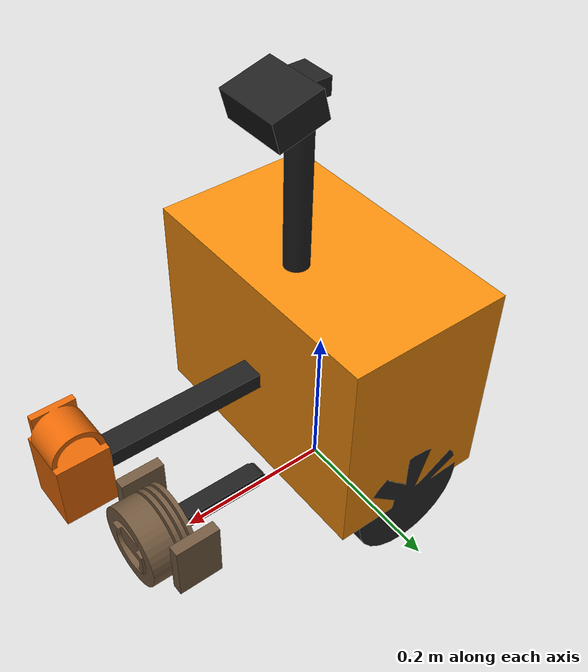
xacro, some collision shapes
<?xml version="1.0"?>
<robot name="shelfbot" xmlns:xacro="http://www.ros.org/wiki/xacro">

  <!-- ══════ PARAMETERS ══════════════════════════════════════════════════ -->
  <xacro:property name="wheel_radius"  value="0.075"/>
  <xacro:property name="wheel_width"   value="0.040"/>
  <xacro:property name="wheel_sep"     value="0.300"/>
  <xacro:property name="caster_radius" value="0.025"/>
  <xacro:property name="body_h"        value="0.260"/>
  <xacro:property name="body_d"        value="0.200"/>
  <xacro:property name="body_w"        value="0.340"/>
  <xacro:property name="climb_stroke"  value="1.400"/>  <!-- 1.4 m max climb height -->

  <!-- ══════ MATERIALS ═══════════════════════════════════════════════════ -->
  <material name="shelfbot_amber">  <color rgba="0.95 0.55 0.05 1.0"/> </material>
  <material name="shelfbot_black">  <color rgba="0.12 0.12 0.12 1.0"/> </material>
  <material name="shelfbot_orange"> <color rgba="0.90 0.40 0.02 1.0"/> </material>
  <material name="shelfbot_rope">   <color rgba="0.45 0.35 0.25 1.0"/> </material>
  <material name="shelfbot_rubber"> <color rgba="0.15 0.15 0.15 1.0"/> </material>
  <material name="shelfbot_grey">   <color rgba="0.60 0.60 0.60 1.0"/> </material>

  <!-- ══════ WORLD + BASE FOOTPRINT ══════════════════════════════════════ -->
  <link name="world"/>
  <link name="base_footprint">
    <visual><geometry><box size="0.001 0.001 0.001"/></geometry></visual>
  </link>
  <joint name="world_to_base_footprint" type="fixed">
    <parent link="world"/><child link="base_footprint"/>
    <origin xyz="0 0 0" rpy="0 0 0"/>
  </joint>
  <joint name="base_footprint_to_base" type="fixed">
    <parent link="base_footprint"/><child link="base_link"/>
    <origin xyz="0 0 ${wheel_radius}" rpy="0 0 0"/>
  </joint>

  <link name="base_link">
    <visual>
      <!-- +body_h/2 lifts the mesh so its bottom sits at the wheel axle line -->
      <origin xyz="0 0 ${body_h/2}" rpy="0 0 0"/>
      <geometry>
        <mesh filename="package://shelfbot_description/meshes/visual/base_link.stl"
              scale="0.001 0.001 0.001"/>
      </geometry>
      <material name="shelfbot_amber"/>
    </visual>
    <collision>
      <origin xyz="0 0 ${body_h/2}" rpy="0 0 0"/>
      <geometry><box size="${body_d} ${body_w} ${body_h}"/></geometry>
    </collision>
    <inertial>
      <origin xyz="0.000803 -0.000049 0.130" rpy="0 0 0"/>
      <mass value="1.6826"/>
      <inertia ixx="0.036796" ixy="-0.000000066" ixz="-0.000013405"
               iyy="0.032397"                     iyz="-0.0000000062"
               izz="0.024299"/>
    </inertial>
  </link>

  <!-- ══════ DRIVE WHEELS ══════════════════════════════════════════════════ -->
  <xacro:macro name="wheel" params="name y_sign">
    <link name="wheel_${name}_link">
      <visual>
        <origin xyz="0 0 0" rpy="${pi/2} 0 0"/>
        <geometry><cylinder radius="${wheel_radius}" length="${wheel_width}"/></geometry>
        <material name="shelfbot_rubber"/>
      </visual>
      <collision>
        <origin xyz="0 0 0" rpy="${pi/2} 0 0"/>
        <geometry><cylinder radius="${wheel_radius}" length="${wheel_width}"/></geometry>
      </collision>
      <inertial>
        <mass value="0.3"/>
        <inertia ixx="0.000603" ixy="0" ixz="0" iyy="0.000603" iyz="0" izz="0.000844"/>
      </inertial>
    </link>
    <joint name="wheel_${name}_joint" type="continuous">
      <parent link="base_link"/><child link="wheel_${name}_link"/>
      <origin xyz="0 ${y_sign * wheel_sep/2} 0" rpy="0 0 0"/>
      <axis xyz="0 1 0"/>
      <dynamics damping="0.01" friction="0.1"/>
    </joint>
    <gazebo reference="wheel_${name}_link"><mu1>1.0</mu1><mu2>1.0</mu2></gazebo>
  </xacro:macro>
  <xacro:wheel name="left"  y_sign="1"/>
  <xacro:wheel name="right" y_sign="-1"/>

  <!-- Rear caster -->
  <link name="caster_link">
    <visual><geometry><sphere radius="${caster_radius}"/></geometry><material name="shelfbot_grey"/></visual>
    <collision><geometry><sphere radius="${caster_radius}"/></geometry></collision>
    <inertial><mass value="0.1"/>
      <inertia ixx="0.000010" ixy="0" ixz="0" iyy="0.000010" iyz="0" izz="0.000010"/>
    </inertial>
  </link>
  <joint name="caster_joint" type="fixed">
    <parent link="base_link"/><child link="caster_link"/>
    <origin xyz="${-body_d/2+0.03} 0 ${-wheel_radius+caster_radius}" rpy="0 0 0"/>
  </joint>
  <gazebo reference="caster_link"><mu1>0.0</mu1><mu2>0.0</mu2><kp>1e6</kp><kd>100.0</kd></gazebo>

  <link name="camera_mast_link">
    <visual>
      <origin xyz="0 0 0.100" rpy="0 0 0"/>
      <geometry><cylinder radius="0.015" length="0.200"/></geometry>
      <material name="shelfbot_black"/>
    </visual>
    <inertial><mass value="0.05"/>
      <inertia ixx="0.0001" ixy="0" ixz="0" iyy="0.0001" iyz="0" izz="0.000002"/>
    </inertial>
  </link>
  <joint name="camera_mast_joint" type="fixed">
    <parent link="base_link"/><child link="camera_mast_link"/>
    <!-- Top-centre of body -->
    <origin xyz="0.040 0.0 ${body_h}" rpy="0 0 0"/>
  </joint>

  <link name="camera_pan_link">
    <visual>
      <origin xyz="0 0 0.010" rpy="0 0 0"/>
      <geometry><box size="0.040 0.040 0.020"/></geometry>
      <material name="shelfbot_black"/>
    </visual>
    <inertial><mass value="0.03"/>
      <inertia ixx="0.000001" ixy="0" ixz="0" iyy="0.000001" iyz="0" izz="0.000001"/>
    </inertial>
  </link>
  <joint name="camera_pan_joint" type="revolute">
    <parent link="camera_mast_link"/><child link="camera_pan_link"/>
    <origin xyz="0 0 0.200" rpy="0 0 0"/>
    <axis xyz="0 0 1"/>
    <!-- ±90° pan to scan both sides of the aisle -->
    <limit lower="-1.571" upper="1.571" effort="5.0" velocity="1.0"/>
    <dynamics damping="0.3" friction="0.05"/>
  </joint>

  <!-- Camera body on pan link, tilted 15° downward to see shelf levels -->
  <link name="camera_link">
    <visual>
      <geometry><box size="0.060 0.080 0.035"/></geometry>
      <material name="shelfbot_black"/>
    </visual>
    <inertial><mass value="0.08"/>
      <inertia ixx="0.000002" ixy="0" ixz="0" iyy="0.000002" iyz="0" izz="0.000002"/>
    </inertial>
  </link>
  <joint name="camera_joint" type="fixed">
    <parent link="camera_pan_link"/><child link="camera_link"/>
    <!-- Slight downward tilt (−15°) so camera sees shelf from above -->
    <origin xyz="0.030 0 0" rpy="0 0.262 0"/>
  </joint>

  <!-- Optical frame: z-forward, x-right, y-down (ROS convention) -->
  <link name="camera_optical_link">
    <inertial><mass value="0.001"/>
      <inertia ixx="1e-7" ixy="0" ixz="0" iyy="1e-7" iyz="0" izz="1e-7"/>
    </inertial>
  </link>
  <joint name="camera_optical_joint" type="fixed">
    <parent link="camera_link"/><child link="camera_optical_link"/>
    <origin xyz="0 0 0" rpy="${-pi/2} 0 ${-pi/2}"/>
  </joint>

  <!-- ══════ IMU ═══════════════════════════════════════════════════════════ -->
  <link name="imu_link">
    <inertial><mass value="0.01"/>
      <inertia ixx="1e-7" ixy="0" ixz="0" iyy="1e-7" iyz="0" izz="1e-7"/>
    </inertial>
  </link>
  <joint name="imu_joint" type="fixed">
    <parent link="base_link"/><child link="imu_link"/>
    <origin xyz="0 0 ${body_h/2}" rpy="0 0 0"/>
  </joint>

  <joint name="clamp_arm_joint" type="revolute">
    <parent link="base_link"/><child link="clamp_arm_link"/>
    <origin xyz="-0.060 0.0 0.130" rpy="0 0 0"/>
    <axis xyz="0 1 0"/>
    <limit lower="-1.571" upper="1.571" effort="80.0" velocity="0.8"/>
    <dynamics damping="0.5" friction="0.1"/>
  </joint>

  <link name="clamp_arm_link">
    <visual>
      <geometry>
        <mesh filename="package://shelfbot_description/meshes/visual/clamp_arm_link.stl"
              scale="0.001 0.001 0.001"/>
      </geometry>
      <material name="shelfbot_black"/>
    </visual>
    <collision>
      <origin xyz="0.190 0 0" rpy="0 0 0"/>
      <geometry><box size="0.388 0.030 0.020"/></geometry>
    </collision>
    <inertial>
      <origin xyz="0.1953 0.0 0.0" rpy="0 0 0"/>
      <mass value="0.6653"/>
      <inertia ixx="0.0000773" ixy="0" ixz="0" iyy="0.009288" iyz="0" izz="0.009316"/>
    </inertial>
  </link>

  <!-- climb_carriage — the sliding element that moves up the rail.
       In simulation this is modelled as a prismatic joint.
       At z=0 robot is at floor; at z=climb_stroke robot is at top shelf. -->
  <joint name="climb_joint" type="prismatic">
    <parent link="clamp_arm_link"/><child link="climb_carriage_link"/>
    <!-- Attached at the tip of the clamp arm, slides in Z (vertical) -->
    <origin xyz="0.388 0.0 0.0" rpy="0 0 0"/>
    <axis xyz="0 0 1"/>
    <limit lower="0.0" upper="${climb_stroke}" effort="200.0" velocity="0.3"/>
    <dynamics damping="5.0" friction="2.0"/>
  </joint>

  <link name="climb_carriage_link">
    <visual>
      <!-- Small carriage block riding on the upright rail -->
      <geometry><box size="0.060 0.060 0.080"/></geometry>
      <material name="shelfbot_orange"/>
    </visual>
    <collision>
      <geometry><box size="0.060 0.060 0.080"/></geometry>
    </collision>
    <inertial>
      <mass value="0.4"/>
      <inertia ixx="0.002" ixy="0" ixz="0" iyy="0.002" iyz="0" izz="0.001"/>
    </inertial>
  </link>

  <!-- clamp_jaw hooks onto the horizontal beam of the shelf upright -->
  <joint name="clamp_jaw_joint" type="revolute">
    <parent link="climb_carriage_link"/><child link="clamp_jaw_link"/>
    <origin xyz="0.0 0.0 0.040" rpy="0 0 0"/>
    <axis xyz="0 1 0"/>
    <limit lower="-0.785" upper="0.785" effort="30.0" velocity="1.0"/>
    <dynamics damping="0.3" friction="0.05"/>
  </joint>

  <link name="clamp_jaw_link">
    <visual>
      <geometry>
        <mesh filename="package://shelfbot_description/meshes/visual/clamp_jaw_link.stl"
              scale="0.001 0.001 0.001"/>
      </geometry>
      <material name="shelfbot_orange"/>
    </visual>
    <collision><geometry><cylinder radius="0.030" length="0.044"/></geometry></collision>
    <inertial>
      <origin xyz="0.0 -0.01156 0.00606" rpy="0 0 0"/>
      <mass value="0.1458"/>
      <inertia ixx="0.0000757" ixy="0" ixz="0" iyy="0.0000876" iyz="-0.0000102" izz="0.0000874"/>
    </inertial>
  </link>

  <joint name="manip_shoulder_joint" type="revolute">
    <parent link="base_link"/><child link="manip_proximal_link"/>
    <origin xyz="0.100 0.0 -0.052" rpy="0 0 0"/>
    <axis xyz="0 1 0"/>
    <limit lower="-1.571" upper="1.571" effort="80.0" velocity="1.0"/>
    <dynamics damping="0.5" friction="0.1"/>
  </joint>

  <link name="manip_proximal_link">
    <visual>
      <geometry>
        <mesh filename="package://shelfbot_description/meshes/visual/manip_proximal_link.stl"
              scale="0.001 0.001 0.001"/>
      </geometry>
      <material name="shelfbot_black"/>
    </visual>
    <collision>
      <origin xyz="0.080 0 0" rpy="0 0 0"/>
      <geometry><box size="0.168 0.025 0.020"/></geometry>
    </collision>
    <inertial>
      <origin xyz="0.09070 0.0 0.0" rpy="0 0 0"/>
      <mass value="0.2666"/>
      <inertia ixx="0.0000317" ixy="0" ixz="0" iyy="0.0008299" iyz="0" izz="0.0008341"/>
    </inertial>
  </link>

  <joint name="gripper_joint" type="revolute">
    <parent link="manip_proximal_link"/><child link="gripper_link"/>
    <origin xyz="0.168 0.0 0.0" rpy="0 0 0"/>
    <axis xyz="0 1 0"/>
    <limit lower="-1.571" upper="1.571" effort="40.0" velocity="2.0"/>
    <dynamics damping="0.2" friction="0.05"/>
  </joint>

  <link name="gripper_link">
    <visual>
      <geometry>
        <mesh filename="package://shelfbot_description/meshes/visual/gripper_link.stl"
              scale="0.001 0.001 0.001"/>
      </geometry>
      <material name="shelfbot_rope"/>
    </visual>
    <collision>
      <origin xyz="-0.015 0 0" rpy="0 0 0"/>
      <geometry><box size="0.068 0.108 0.108"/></geometry>
    </collision>
    <inertial>
      <origin xyz="-0.01496 0.0 0.0" rpy="0 0 0"/>
      <mass value="0.4723"/>
      <inertia ixx="0.0008638" ixy="0" ixz="0" iyy="0.0005820" iyz="0" izz="0.0006041"/>
    </inertial>
  </link>

  <!-- Left gripper finger — opens +Y direction -->
  <link name="gripper_finger_left">
    <visual>
      <origin xyz="-0.030 0.020 0" rpy="0 0 0"/>
      <geometry><box size="0.060 0.015 0.080"/></geometry>
      <material name="shelfbot_rope"/>
    </visual>
    <collision>
      <origin xyz="-0.030 0.020 0" rpy="0 0 0"/>
      <geometry><box size="0.060 0.015 0.080"/></geometry>
    </collision>
    <inertial><mass value="0.08"/>
      <inertia ixx="0.00005" ixy="0" ixz="0" iyy="0.00005" iyz="0" izz="0.00002"/>
    </inertial>
  </link>
  <joint name="gripper_finger_left_joint" type="revolute">
    <parent link="gripper_link"/><child link="gripper_finger_left"/>
    <origin xyz="-0.010 0.040 0" rpy="0 0 0"/>
    <axis xyz="0 0 1"/>
    <!-- 0 = fully open, 0.8 rad ≈ closed enough to grip a bottle -->
    <limit lower="0.0" upper="0.800" effort="20.0" velocity="1.5"/>
    <dynamics damping="0.1" friction="0.02"/>
  </joint>

  <!-- Right gripper finger — mirrors left, opens −Y direction -->
  <link name="gripper_finger_right">
    <visual>
      <origin xyz="-0.030 -0.020 0" rpy="0 0 0"/>
      <geometry><box size="0.060 0.015 0.080"/></geometry>
      <material name="shelfbot_rope"/>
    </visual>
    <collision>
      <origin xyz="-0.030 -0.020 0" rpy="0 0 0"/>
      <geometry><box size="0.060 0.015 0.080"/></geometry>
    </collision>
    <inertial><mass value="0.08"/>
      <inertia ixx="0.00005" ixy="0" ixz="0" iyy="0.00005" iyz="0" izz="0.00002"/>
    </inertial>
  </link>
  <joint name="gripper_finger_right_joint" type="revolute">
    <parent link="gripper_link"/><child link="gripper_finger_right"/>
    <origin xyz="-0.010 -0.040 0" rpy="0 0 0"/>
    <axis xyz="0 0 -1"/>  <!-- mirror: closing rotates opposite direction -->
    <limit lower="0.0" upper="0.800" effort="20.0" velocity="1.5"/>
    <dynamics damping="0.1" friction="0.02"/>
  </joint>

  <!-- ══════ GAZEBO PLUGINS ════════════════════════════════════════════════ -->
  <gazebo>
    <plugin filename="gz-sim8-physics-system"        name="gz::sim::systems::Physics"/>
    <plugin filename="gz-sim8-user-commands-system"  name="gz::sim::systems::UserCommands"/>
    <plugin filename="gz-sim8-scene-broadcaster-system" name="gz::sim::systems::SceneBroadcaster"/>
    <plugin filename="gz-sim8-sensors-system"        name="gz::sim::systems::Sensors">
      <render_engine>ogre2</render_engine>
    </plugin>
    <plugin filename="gz-sim8-imu-system"            name="gz::sim::systems::Imu"/>
    <plugin filename="gz-sim8-contact-system"        name="gz::sim::systems::Contact"/>

    <plugin filename="gz-sim8-diff-drive-system" name="gz::sim::systems::DiffDrive">
      <left_joint>wheel_left_joint</left_joint>
      <right_joint>wheel_right_joint</right_joint>
      <wheel_separation>${wheel_sep}</wheel_separation>
      <wheel_radius>${wheel_radius}</wheel_radius>
      <odom_publish_frequency>50</odom_publish_frequency>
      <topic>/cmd_vel</topic>
      <odom_topic>/odom</odom_topic>
      <tf_topic>/tf</tf_topic>
      <frame_id>odom</frame_id>
      <child_frame_id>base_footprint</child_frame_id>
      <max_linear_acceleration>1.0</max_linear_acceleration>
      <min_linear_acceleration>-1.0</min_linear_acceleration>
      <max_angular_acceleration>2.0</max_angular_acceleration>
      <min_angular_acceleration>-2.0</min_angular_acceleration>
    </plugin>

    <plugin filename="gz-sim8-joint-state-publisher-system"
            name="gz::sim::systems::JointStatePublisher">
      <topic>/joint_states</topic>
    </plugin>

    <plugin filename="gz-sim8-odometry-publisher-system"
            name="gz::sim::systems::OdometryPublisher">
      <odom_topic>/odom</odom_topic>
      <tf_topic>/tf</tf_topic>
    </plugin>
  </gazebo>

  <!-- ── RGB-D camera sensor on camera_link ── -->
  <gazebo reference="camera_link">
    <sensor name="rgbd_camera" type="rgbd_camera">
      <always_on>1</always_on>
      <update_rate>30</update_rate>
      <camera>
        <horizontal_fov>1.047</horizontal_fov>
        <image><width>640</width><height>480</height><format>R8G8B8</format></image>
        <clip><near>0.05</near><far>8.0</far></clip>
        <depth_camera><clip><near>0.1</near><far>5.0</far></clip></depth_camera>
      </camera>
      <topic>/camera</topic>
    </sensor>
  </gazebo>

  <!-- ── IMU sensor ── -->
  <gazebo reference="imu_link">
    <sensor name="imu_sensor" type="imu">
      <always_on>1</always_on>
      <update_rate>100</update_rate>
      <topic>/imu/data</topic>
      <imu>
        <angular_velocity>
          <x><noise type="gaussian"><mean>0</mean><stddev>0.009</stddev></noise></x>
          <y><noise type="gaussian"><mean>0</mean><stddev>0.009</stddev></noise></y>
          <z><noise type="gaussian"><mean>0</mean><stddev>0.009</stddev></noise></z>
        </angular_velocity>
        <linear_acceleration>
          <x><noise type="gaussian"><mean>0</mean><stddev>0.021</stddev></noise></x>
          <y><noise type="gaussian"><mean>0</mean><stddev>0.021</stddev></noise></y>
          <z><noise type="gaussian"><mean>0</mean><stddev>0.021</stddev></noise></z>
        </linear_acceleration>
      </imu>
    </sensor>
  </gazebo>

</robot>
